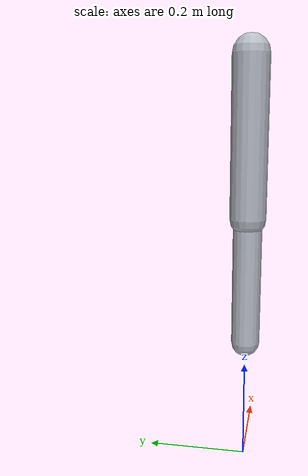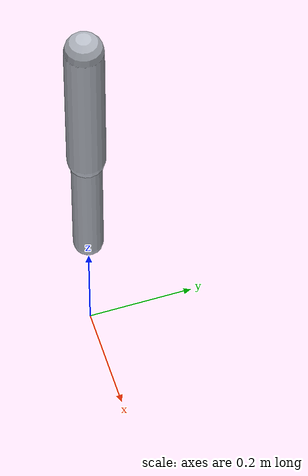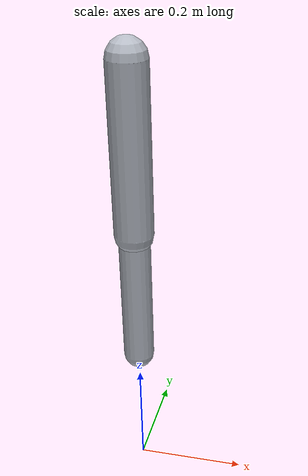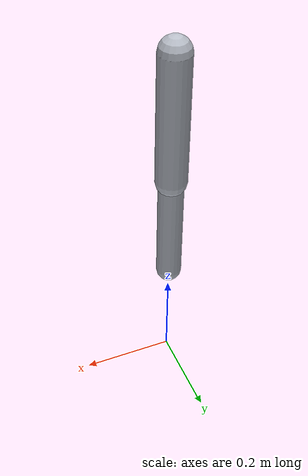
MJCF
<mujoco model="arm2_f15l06">
  <compiler angle="radian" autolimits="true"/>

  <option timestep="0.002" integrator="implicitfast" gravity="0 0 -9.81">
    <!-- Nothing in this task touches anything. A contact-free mj_step is the cheapest honest
         unit of work for the steps-per-second measurement the lesson ends on. -->
    <flag contact="disable"/>
  </option>

  <default>
    <joint type="hinge" axis="0 1 0" range="-3.0 3.0" damping="0.01" armature="0.05"/>
    <geom type="capsule" rgba="0.72 0.74 0.78 1" contype="0" conaffinity="0"/>
  </default>

  <worldbody>
    <light pos="0 0 2"/>
    <body name="upper" pos="0 0 0.8">
      <joint name="shoulder"/>
      <geom name="upper_g" fromto="0 0 0 0 0 -0.30" size="0.035" mass="1.0"/>
      <body name="lower" pos="0 0 -0.30">
        <joint name="elbow"/>
        <geom name="lower_g" fromto="0 0 0 0 0 -0.25" size="0.028" mass="0.6"/>
      </body>
    </body>
  </worldbody>

  <actuator>
    <motor name="shoulder_m" joint="shoulder" gear="1" ctrlrange="-8 8"/>
    <motor name="elbow_m"    joint="elbow"    gear="1" ctrlrange="-3 3"/>
  </actuator>

  <keyframe>
    <key name="hanging" qpos="0 0" qvel="0 0" ctrl="0 0"/>
  </keyframe>
</mujoco>
